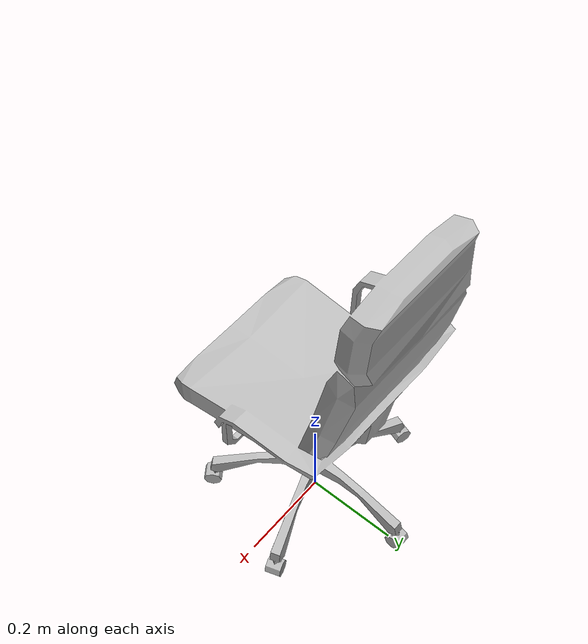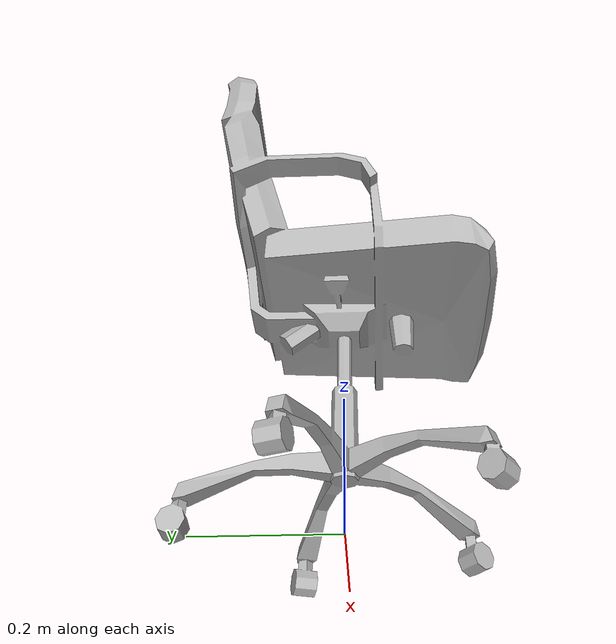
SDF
<sdf version='1.3'>
  <model name='office_chair'>
    <link name='link'>
      <pose>0 0 0 0 0 0</pose>
      <inertial>
        <pose>0.000014 0.000001 0.000123 0.000000 0.000000 0.000000</pose>
        <mass>7.977480</mass>
        <inertia>
          <ixx>0.085442</ixx>
          <ixy>0.000277</ixy>
          <ixz>0.002488</ixz>
          <iyy>0.054158</iyy>
          <iyz>-0.001207</iyz>
          <izz>0.078330</izz>
        </inertia>
      </inertial>
      <collision name='office_chair_collision'>
        <pose>0 0 0 0 0 0</pose>
        <geometry>
          <mesh>
            <scale>1.0 1.0 1.0</scale>
            <uri>model://office_chair/meshes/office_chair.stl</uri>
          </mesh>
        </geometry>
      </collision>
      <visual name='office_chair_vis'>
        <pose>0 0 0 0 0 0</pose>
        <geometry>
          <mesh>
            <scale>1.0 1.0 1.0</scale>
            <uri>model://office_chair/meshes/office_chair.stl</uri>
          </mesh>
        </geometry>
      </visual>
    </link>
  </model>
</sdf>
